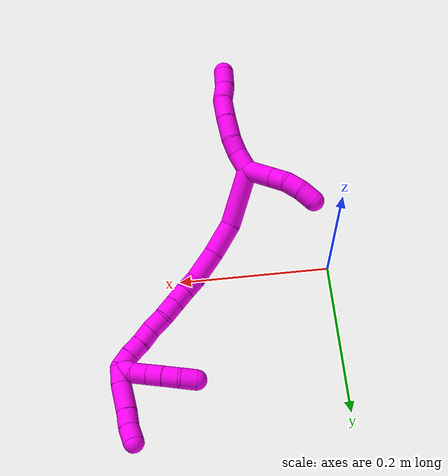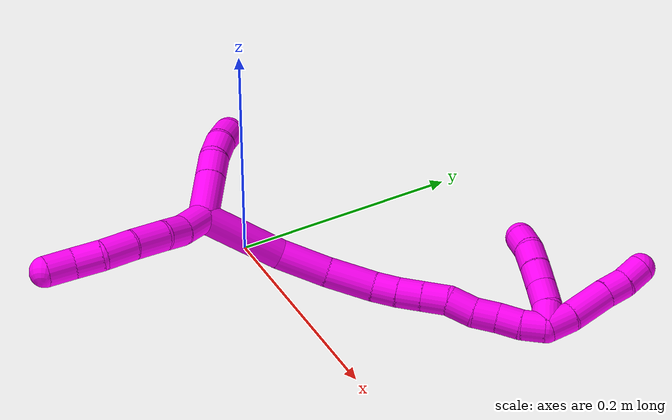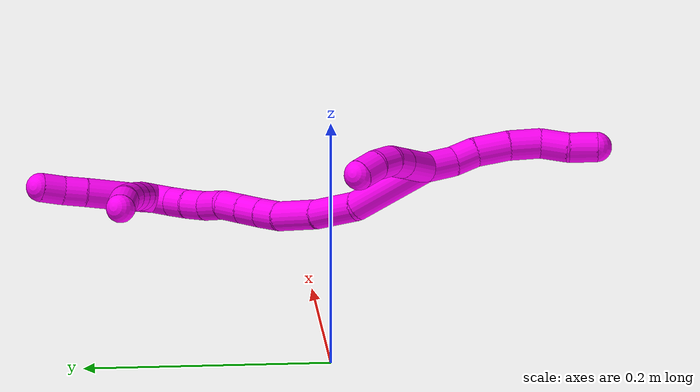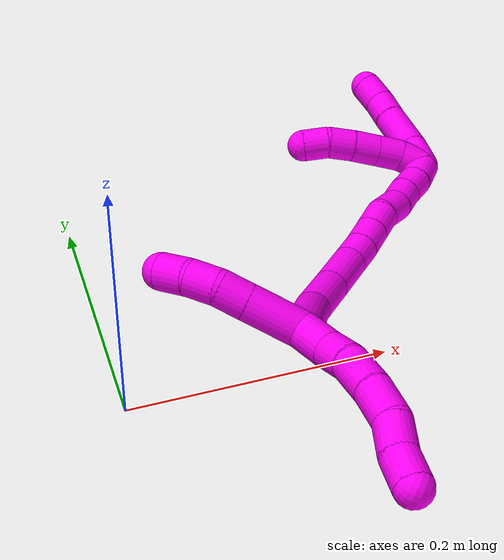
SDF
<sdf version="1.7">
 <world name="default">
  <model name="10">
   <static>0</static>
   <link name="10">
    <collision name="collision-cylinder-e_1_2_8">
     <pose>-0.008161 -0.002616 0.009718 0.262996 -0.681357 -0.093705</pose>
     <geometry><cylinder><radius>0.0125</radius><length>0.025915</length></cylinder></geometry>
     <surface>
      <friction><ode><mu>1.16</mu><mu2>1.16</mu2><slip1>0</slip1><slip2>0</slip2></ode></friction>
      <contact><ode><kp>1e+06</kp><kd>1</kd><max_vel>0</max_vel><min_depth>0.001</min_depth></ode></contact>
     </surface>
    </collision>
    <visual name="visual-cylinder-e_1_2_8">
     <pose>-0.008161 -0.002616 0.009718 0.262996 -0.681357 -0.093705</pose>
     <geometry><cylinder><radius>0.0125</radius><length>0.025915</length></cylinder></geometry>
     <material><ambient>1 0 0.964706 1</ambient></material>
    </visual>
    <collision name="collision-cylinder-e_2_8_9">
     <pose>-0.024489 -0.006558 0.025728 0.207571 -0.903849 -0.101039</pose>
     <geometry><cylinder><radius>0.0125</radius><length>0.020787</length></cylinder></geometry>
     <surface>
      <friction><ode><mu>1.16</mu><mu2>1.16</mu2><slip1>0</slip1><slip2>0</slip2></ode></friction>
      <contact><ode><kp>1e+06</kp><kd>1</kd><max_vel>0</max_vel><min_depth>0.001</min_depth></ode></contact>
     </surface>
    </collision>
    <visual name="visual-cylinder-e_2_8_9">
     <pose>-0.024489 -0.006558 0.025728 0.207571 -0.903849 -0.101039</pose>
     <geometry><cylinder><radius>0.0125</radius><length>0.020787</length></cylinder></geometry>
     <material><ambient>1 0 0.964706 1</ambient></material>
    </visual>
    <collision name="collision-cylinder-e_3_9_10">
     <pose>-0.0435 -0.012884 0.040233 0.546916 -0.845369 -0.250996</pose>
     <geometry><cylinder><radius>0.0125</radius><length>0.028988</length></cylinder></geometry>
     <surface>
      <friction><ode><mu>1.16</mu><mu2>1.16</mu2><slip1>0</slip1><slip2>0</slip2></ode></friction>
      <contact><ode><kp>1e+06</kp><kd>1</kd><max_vel>0</max_vel><min_depth>0.001</min_depth></ode></contact>
     </surface>
    </collision>
    <visual name="visual-cylinder-e_3_9_10">
     <pose>-0.0435 -0.012884 0.040233 0.546916 -0.845369 -0.250996</pose>
     <geometry><cylinder><radius>0.0125</radius><length>0.028988</length></cylinder></geometry>
     <material><ambient>1 0 0.964706 1</ambient></material>
    </visual>
    <collision name="collision-cylinder-e_4_10_11">
     <pose>-0.063697 -0.024101 0.056019 0.687367 -0.762116 -0.284826</pose>
     <geometry><cylinder><radius>0.0125</radius><length>0.027089</length></cylinder></geometry>
     <surface>
      <friction><ode><mu>1.16</mu><mu2>1.16</mu2><slip1>0</slip1><slip2>0</slip2></ode></friction>
      <contact><ode><kp>1e+06</kp><kd>1</kd><max_vel>0</max_vel><min_depth>0.001</min_depth></ode></contact>
     </surface>
    </collision>
    <visual name="visual-cylinder-e_4_10_11">
     <pose>-0.063697 -0.024101 0.056019 0.687367 -0.762116 -0.284826</pose>
     <geometry><cylinder><radius>0.0125</radius><length>0.027089</length></cylinder></geometry>
     <material><ambient>1 0 0.964706 1</ambient></material>
    </visual>
    <collision name="collision-cylinder-e_5_11_12">
     <pose>-0.080103 -0.038587 0.068154 1.06662 -0.641577 -0.387399</pose>
     <geometry><cylinder><radius>0.0125</radius><length>0.023576</length></cylinder></geometry>
     <surface>
      <friction><ode><mu>1.16</mu><mu2>1.16</mu2><slip1>0</slip1><slip2>0</slip2></ode></friction>
      <contact><ode><kp>1e+06</kp><kd>1</kd><max_vel>0</max_vel><min_depth>0.001</min_depth></ode></contact>
     </surface>
    </collision>
    <visual name="visual-cylinder-e_5_11_12">
     <pose>-0.080103 -0.038587 0.068154 1.06662 -0.641577 -0.387399</pose>
     <geometry><cylinder><radius>0.0125</radius><length>0.023576</length></cylinder></geometry>
     <material><ambient>1 0 0.964706 1</ambient></material>
    </visual>
    <collision name="collision-cylinder-e_6_12_6">
     <pose>-0.095301 -0.053185 0.078495 0.830837 -0.759843 -0.348696</pose>
     <geometry><cylinder><radius>0.0125</radius><length>0.023645</length></cylinder></geometry>
     <surface>
      <friction><ode><mu>1.16</mu><mu2>1.16</mu2><slip1>0</slip1><slip2>0</slip2></ode></friction>
      <contact><ode><kp>1e+06</kp><kd>1</kd><max_vel>0</max_vel><min_depth>0.001</min_depth></ode></contact>
     </surface>
    </collision>
    <visual name="visual-cylinder-e_6_12_6">
     <pose>-0.095301 -0.053185 0.078495 0.830837 -0.759843 -0.348696</pose>
     <geometry><cylinder><radius>0.0125</radius><length>0.023645</length></cylinder></geometry>
     <material><ambient>1 0 0.964706 1</ambient></material>
    </visual>
    <collision name="collision-cylinder-e_1_2_13">
     <pose>0.000641 0.000458 -0.019201 -3.11777 0.033381 -1.90196</pose>
     <geometry><cylinder><radius>0.0125</radius><length>0.038434</length></cylinder></geometry>
     <surface>
      <friction><ode><mu>1.16</mu><mu2>1.16</mu2><slip1>0</slip1><slip2>0</slip2></ode></friction>
      <contact><ode><kp>1e+06</kp><kd>1</kd><max_vel>0</max_vel><min_depth>0.001</min_depth></ode></contact>
     </surface>
    </collision>
    <visual name="visual-cylinder-e_1_2_13">
     <pose>0.000641 0.000458 -0.019201 -3.11777 0.033381 -1.90196</pose>
     <geometry><cylinder><radius>0.0125</radius><length>0.038434</length></cylinder></geometry>
     <material><ambient>1 0 0.964706 1</ambient></material>
    </visual>
    <collision name="collision-cylinder-e_2_13_14">
     <pose>0.001679 0.001203 -0.048435 -3.11294 0.039505 -1.88673</pose>
     <geometry><cylinder><radius>0.0125</radius><length>0.020091</length></cylinder></geometry>
     <surface>
      <friction><ode><mu>1.16</mu><mu2>1.16</mu2><slip1>0</slip1><slip2>0</slip2></ode></friction>
      <contact><ode><kp>1e+06</kp><kd>1</kd><max_vel>0</max_vel><min_depth>0.001</min_depth></ode></contact>
     </surface>
    </collision>
    <visual name="visual-cylinder-e_2_13_14">
     <pose>0.001679 0.001203 -0.048435 -3.11294 0.039505 -1.88673</pose>
     <geometry><cylinder><radius>0.0125</radius><length>0.020091</length></cylinder></geometry>
     <material><ambient>1 0 0.964706 1</ambient></material>
    </visual>
    <collision name="collision-cylinder-e_3_14_15">
     <pose>0.005265 0.000553 -0.068297 3.04657 0.312423 2.55519</pose>
     <geometry><cylinder><radius>0.0125</radius><length>0.020751</length></cylinder></geometry>
     <surface>
      <friction><ode><mu>1.16</mu><mu2>1.16</mu2><slip1>0</slip1><slip2>0</slip2></ode></friction>
      <contact><ode><kp>1e+06</kp><kd>1</kd><max_vel>0</max_vel><min_depth>0.001</min_depth></ode></contact>
     </surface>
    </collision>
    <visual name="visual-cylinder-e_3_14_15">
     <pose>0.005265 0.000553 -0.068297 3.04657 0.312423 2.55519</pose>
     <geometry><cylinder><radius>0.0125</radius><length>0.020751</length></cylinder></geometry>
     <material><ambient>1 0 0.964706 1</ambient></material>
    </visual>
    <collision name="collision-cylinder-e_4_15_5">
     <pose>0.01368 -0.002104 -0.086907 2.94816 0.528591 2.45315</pose>
     <geometry><cylinder><radius>0.0125</radius><length>0.020725</length></cylinder></geometry>
     <surface>
      <friction><ode><mu>1.16</mu><mu2>1.16</mu2><slip1>0</slip1><slip2>0</slip2></ode></friction>
      <contact><ode><kp>1e+06</kp><kd>1</kd><max_vel>0</max_vel><min_depth>0.001</min_depth></ode></contact>
     </surface>
    </collision>
    <visual name="visual-cylinder-e_4_15_5">
     <pose>0.01368 -0.002104 -0.086907 2.94816 0.528591 2.45315</pose>
     <geometry><cylinder><radius>0.0125</radius><length>0.020725</length></cylinder></geometry>
     <material><ambient>1 0 0.964706 1</ambient></material>
    </visual>
    <collision name="collision-cylinder-e_1_2_16">
     <pose>0.034525 0.010285 0.003076 -1.2802 1.26934 -1.0031</pose>
     <geometry><cylinder><radius>0.0125</radius><length>0.072311</length></cylinder></geometry>
     <surface>
      <friction><ode><mu>1.16</mu><mu2>1.16</mu2><slip1>0</slip1><slip2>0</slip2></ode></friction>
      <contact><ode><kp>1e+06</kp><kd>1</kd><max_vel>0</max_vel><min_depth>0.001</min_depth></ode></contact>
     </surface>
    </collision>
    <visual name="visual-cylinder-e_1_2_16">
     <pose>0.034525 0.010285 0.003076 -1.2802 1.26934 -1.0031</pose>
     <geometry><cylinder><radius>0.0125</radius><length>0.072311</length></cylinder></geometry>
     <material><ambient>1 0 0.964706 1</ambient></material>
    </visual>
    <collision name="collision-cylinder-e_2_16_17">
     <pose>0.086308 0.032098 0.009997 -1.24887 0.957247 -0.715622</pose>
     <geometry><cylinder><radius>0.0125</radius><length>0.042214</length></cylinder></geometry>
     <surface>
      <friction><ode><mu>1.16</mu><mu2>1.16</mu2><slip1>0</slip1><slip2>0</slip2></ode></friction>
      <contact><ode><kp>1e+06</kp><kd>1</kd><max_vel>0</max_vel><min_depth>0.001</min_depth></ode></contact>
     </surface>
    </collision>
    <visual name="visual-cylinder-e_2_16_17">
     <pose>0.086308 0.032098 0.009997 -1.24887 0.957247 -0.715622</pose>
     <geometry><cylinder><radius>0.0125</radius><length>0.042214</length></cylinder></geometry>
     <material><ambient>1 0 0.964706 1</ambient></material>
    </visual>
    <collision name="collision-cylinder-e_3_17_18">
     <pose>0.118475 0.056484 0.017706 -1.27885 0.83771 -0.639426</pose>
     <geometry><cylinder><radius>0.0125</radius><length>0.040126</length></cylinder></geometry>
     <surface>
      <friction><ode><mu>1.16</mu><mu2>1.16</mu2><slip1>0</slip1><slip2>0</slip2></ode></friction>
      <contact><ode><kp>1e+06</kp><kd>1</kd><max_vel>0</max_vel><min_depth>0.001</min_depth></ode></contact>
     </surface>
    </collision>
    <visual name="visual-cylinder-e_3_17_18">
     <pose>0.118475 0.056484 0.017706 -1.27885 0.83771 -0.639426</pose>
     <geometry><cylinder><radius>0.0125</radius><length>0.040126</length></cylinder></geometry>
     <material><ambient>1 0 0.964706 1</ambient></material>
    </visual>
    <collision name="collision-cylinder-e_4_18_19">
     <pose>0.139681 0.077108 0.023756 -1.29648 0.662768 -0.50988</pose>
     <geometry><cylinder><radius>0.0125</radius><length>0.020469</length></cylinder></geometry>
     <surface>
      <friction><ode><mu>1.16</mu><mu2>1.16</mu2><slip1>0</slip1><slip2>0</slip2></ode></friction>
      <contact><ode><kp>1e+06</kp><kd>1</kd><max_vel>0</max_vel><min_depth>0.001</min_depth></ode></contact>
     </surface>
    </collision>
    <visual name="visual-cylinder-e_4_18_19">
     <pose>0.139681 0.077108 0.023756 -1.29648 0.662768 -0.50988</pose>
     <geometry><cylinder><radius>0.0125</radius><length>0.020469</length></cylinder></geometry>
     <material><ambient>1 0 0.964706 1</ambient></material>
    </visual>
    <collision name="collision-cylinder-e_5_19_20">
     <pose>0.152126 0.092973 0.027477 -1.3834 0.640815 -0.536417</pose>
     <geometry><cylinder><radius>0.0125</radius><length>0.020565</length></cylinder></geometry>
     <surface>
      <friction><ode><mu>1.16</mu><mu2>1.16</mu2><slip1>0</slip1><slip2>0</slip2></ode></friction>
      <contact><ode><kp>1e+06</kp><kd>1</kd><max_vel>0</max_vel><min_depth>0.001</min_depth></ode></contact>
     </surface>
    </collision>
    <visual name="visual-cylinder-e_5_19_20">
     <pose>0.152126 0.092973 0.027477 -1.3834 0.640815 -0.536417</pose>
     <geometry><cylinder><radius>0.0125</radius><length>0.020565</length></cylinder></geometry>
     <material><ambient>1 0 0.964706 1</ambient></material>
    </visual>
    <collision name="collision-cylinder-e_6_20_21">
     <pose>0.164766 0.109613 0.030625 -1.38419 0.64152 -0.537431</pose>
     <geometry><cylinder><radius>0.0125</radius><length>0.0217</length></cylinder></geometry>
     <surface>
      <friction><ode><mu>1.16</mu><mu2>1.16</mu2><slip1>0</slip1><slip2>0</slip2></ode></friction>
      <contact><ode><kp>1e+06</kp><kd>1</kd><max_vel>0</max_vel><min_depth>0.001</min_depth></ode></contact>
     </surface>
    </collision>
    <visual name="visual-cylinder-e_6_20_21">
     <pose>0.164766 0.109613 0.030625 -1.38419 0.64152 -0.537431</pose>
     <geometry><cylinder><radius>0.0125</radius><length>0.0217</length></cylinder></geometry>
     <material><ambient>1 0 0.964706 1</ambient></material>
    </visual>
    <collision name="collision-cylinder-e_7_21_22">
     <pose>0.179055 0.125187 0.036337 -1.04306 0.763806 -0.453601</pose>
     <geometry><cylinder><radius>0.0125</radius><length>0.022541</length></cylinder></geometry>
     <surface>
      <friction><ode><mu>1.16</mu><mu2>1.16</mu2><slip1>0</slip1><slip2>0</slip2></ode></friction>
      <contact><ode><kp>1e+06</kp><kd>1</kd><max_vel>0</max_vel><min_depth>0.001</min_depth></ode></contact>
     </surface>
    </collision>
    <visual name="visual-cylinder-e_7_21_22">
     <pose>0.179055 0.125187 0.036337 -1.04306 0.763806 -0.453601</pose>
     <geometry><cylinder><radius>0.0125</radius><length>0.022541</length></cylinder></geometry>
     <material><ambient>1 0 0.964706 1</ambient></material>
    </visual>
    <collision name="collision-cylinder-e_8_22_23">
     <pose>0.193526 0.139501 0.042063 -1.35092 0.729859 -0.594055</pose>
     <geometry><cylinder><radius>0.0125</radius><length>0.020023</length></cylinder></geometry>
     <surface>
      <friction><ode><mu>1.16</mu><mu2>1.16</mu2><slip1>0</slip1><slip2>0</slip2></ode></friction>
      <contact><ode><kp>1e+06</kp><kd>1</kd><max_vel>0</max_vel><min_depth>0.001</min_depth></ode></contact>
     </surface>
    </collision>
    <visual name="visual-cylinder-e_8_22_23">
     <pose>0.193526 0.139501 0.042063 -1.35092 0.729859 -0.594055</pose>
     <geometry><cylinder><radius>0.0125</radius><length>0.020023</length></cylinder></geometry>
     <material><ambient>1 0 0.964706 1</ambient></material>
    </visual>
    <collision name="collision-cylinder-e_9_23_24">
     <pose>0.206377 0.154184 0.046365 -1.22408 0.665449 -0.475962</pose>
     <geometry><cylinder><radius>0.0125</radius><length>0.020007</length></cylinder></geometry>
     <surface>
      <friction><ode><mu>1.16</mu><mu2>1.16</mu2><slip1>0</slip1><slip2>0</slip2></ode></friction>
      <contact><ode><kp>1e+06</kp><kd>1</kd><max_vel>0</max_vel><min_depth>0.001</min_depth></ode></contact>
     </surface>
    </collision>
    <visual name="visual-cylinder-e_9_23_24">
     <pose>0.206377 0.154184 0.046365 -1.22408 0.665449 -0.475962</pose>
     <geometry><cylinder><radius>0.0125</radius><length>0.020007</length></cylinder></geometry>
     <material><ambient>1 0 0.964706 1</ambient></material>
    </visual>
    <collision name="collision-cylinder-e_10_24_1">
     <pose>0.21881 0.16937 0.049858 -1.46601 0.674302 -0.611418</pose>
     <geometry><cylinder><radius>0.0125</radius><length>0.020042</length></cylinder></geometry>
     <surface>
      <friction><ode><mu>1.16</mu><mu2>1.16</mu2><slip1>0</slip1><slip2>0</slip2></ode></friction>
      <contact><ode><kp>1e+06</kp><kd>1</kd><max_vel>0</max_vel><min_depth>0.001</min_depth></ode></contact>
     </surface>
    </collision>
    <visual name="visual-cylinder-e_10_24_1">
     <pose>0.21881 0.16937 0.049858 -1.46601 0.674302 -0.611418</pose>
     <geometry><cylinder><radius>0.0125</radius><length>0.020042</length></cylinder></geometry>
     <material><ambient>1 0 0.964706 1</ambient></material>
    </visual>
    <collision name="collision-cylinder-e_1_1_25">
     <pose>0.22511 0.177108 0.040676 3.13695 0.004362 1.50889</pose>
     <geometry><cylinder><radius>0.0125</radius><length>0.02</length></cylinder></geometry>
     <surface>
      <friction><ode><mu>1.16</mu><mu2>1.16</mu2><slip1>0</slip1><slip2>0</slip2></ode></friction>
      <contact><ode><kp>1e+06</kp><kd>1</kd><max_vel>0</max_vel><min_depth>0.001</min_depth></ode></contact>
     </surface>
    </collision>
    <visual name="visual-cylinder-e_1_1_25">
     <pose>0.22511 0.177108 0.040676 3.13695 0.004362 1.50889</pose>
     <geometry><cylinder><radius>0.0125</radius><length>0.02</length></cylinder></geometry>
     <material><ambient>1 0 0.964706 1</ambient></material>
    </visual>
    <collision name="collision-cylinder-e_2_25_26">
     <pose>0.223967 0.174462 0.021094 2.87666 -0.119019 -0.840939</pose>
     <geometry><cylinder><radius>0.0125</radius><length>0.02</length></cylinder></geometry>
     <surface>
      <friction><ode><mu>1.16</mu><mu2>1.16</mu2><slip1>0</slip1><slip2>0</slip2></ode></friction>
      <contact><ode><kp>1e+06</kp><kd>1</kd><max_vel>0</max_vel><min_depth>0.001</min_depth></ode></contact>
     </surface>
    </collision>
    <visual name="visual-cylinder-e_2_25_26">
     <pose>0.223967 0.174462 0.021094 2.87666 -0.119019 -0.840939</pose>
     <geometry><cylinder><radius>0.0125</radius><length>0.02</length></cylinder></geometry>
     <material><ambient>1 0 0.964706 1</ambient></material>
    </visual>
    <collision name="collision-cylinder-e_3_26_27">
     <pose>0.221554 0.169161 0.001961 2.86594 -0.122859 -0.834755</pose>
     <geometry><cylinder><radius>0.0125</radius><length>0.02</length></cylinder></geometry>
     <surface>
      <friction><ode><mu>1.16</mu><mu2>1.16</mu2><slip1>0</slip1><slip2>0</slip2></ode></friction>
      <contact><ode><kp>1e+06</kp><kd>1</kd><max_vel>0</max_vel><min_depth>0.001</min_depth></ode></contact>
     </surface>
    </collision>
    <visual name="visual-cylinder-e_3_26_27">
     <pose>0.221554 0.169161 0.001961 2.86594 -0.122859 -0.834755</pose>
     <geometry><cylinder><radius>0.0125</radius><length>0.02</length></cylinder></geometry>
     <material><ambient>1 0 0.964706 1</ambient></material>
    </visual>
    <collision name="collision-cylinder-e_4_27_28">
     <pose>0.219571 0.163197 -0.017011 2.8083 -0.075795 -0.443415</pose>
     <geometry><cylinder><radius>0.0125</radius><length>0.02</length></cylinder></geometry>
     <surface>
      <friction><ode><mu>1.16</mu><mu2>1.16</mu2><slip1>0</slip1><slip2>0</slip2></ode></friction>
      <contact><ode><kp>1e+06</kp><kd>1</kd><max_vel>0</max_vel><min_depth>0.001</min_depth></ode></contact>
     </surface>
    </collision>
    <visual name="visual-cylinder-e_4_27_28">
     <pose>0.219571 0.163197 -0.017011 2.8083 -0.075795 -0.443415</pose>
     <geometry><cylinder><radius>0.0125</radius><length>0.02</length></cylinder></geometry>
     <material><ambient>1 0 0.964706 1</ambient></material>
    </visual>
    <collision name="collision-cylinder-e_5_28_4">
     <pose>0.219401 0.154472 -0.034789 2.56247 0.058728 0.196539</pose>
     <geometry><cylinder><radius>0.0125</radius><length>0.02</length></cylinder></geometry>
     <surface>
      <friction><ode><mu>1.16</mu><mu2>1.16</mu2><slip1>0</slip1><slip2>0</slip2></ode></friction>
      <contact><ode><kp>1e+06</kp><kd>1</kd><max_vel>0</max_vel><min_depth>0.001</min_depth></ode></contact>
     </surface>
    </collision>
    <visual name="visual-cylinder-e_5_28_4">
     <pose>0.219401 0.154472 -0.034789 2.56247 0.058728 0.196539</pose>
     <geometry><cylinder><radius>0.0125</radius><length>0.02</length></cylinder></geometry>
     <material><ambient>1 0 0.964706 1</ambient></material>
    </visual>
    <collision name="collision-cylinder-e_1_1_29">
     <pose>0.232102 0.183755 0.044236 -2.34392 0.651638 -1.35156</pose>
     <geometry><cylinder><radius>0.0125</radius><length>0.023198</length></cylinder></geometry>
     <surface>
      <friction><ode><mu>1.16</mu><mu2>1.16</mu2><slip1>0</slip1><slip2>0</slip2></ode></friction>
      <contact><ode><kp>1e+06</kp><kd>1</kd><max_vel>0</max_vel><min_depth>0.001</min_depth></ode></contact>
     </surface>
    </collision>
    <visual name="visual-cylinder-e_1_1_29">
     <pose>0.232102 0.183755 0.044236 -2.34392 0.651638 -1.35156</pose>
     <geometry><cylinder><radius>0.0125</radius><length>0.023198</length></cylinder></geometry>
     <material><ambient>1 0 0.964706 1</ambient></material>
    </visual>
    <collision name="collision-cylinder-e_2_29_30">
     <pose>0.248511 0.199692 0.025435 -2.49469 0.544243 -1.38838</pose>
     <geometry><cylinder><radius>0.0125</radius><length>0.036211</length></cylinder></geometry>
     <surface>
      <friction><ode><mu>1.16</mu><mu2>1.16</mu2><slip1>0</slip1><slip2>0</slip2></ode></friction>
      <contact><ode><kp>1e+06</kp><kd>1</kd><max_vel>0</max_vel><min_depth>0.001</min_depth></ode></contact>
     </surface>
    </collision>
    <visual name="visual-cylinder-e_2_29_30">
     <pose>0.248511 0.199692 0.025435 -2.49469 0.544243 -1.38838</pose>
     <geometry><cylinder><radius>0.0125</radius><length>0.036211</length></cylinder></geometry>
     <material><ambient>1 0 0.964706 1</ambient></material>
    </visual>
    <collision name="collision-cylinder-e_3_30_31">
     <pose>0.263585 0.214536 0.006802 -2.42098 0.599106 -1.37335</pose>
     <geometry><cylinder><radius>0.0125</radius><length>0.020216</length></cylinder></geometry>
     <surface>
      <friction><ode><mu>1.16</mu><mu2>1.16</mu2><slip1>0</slip1><slip2>0</slip2></ode></friction>
      <contact><ode><kp>1e+06</kp><kd>1</kd><max_vel>0</max_vel><min_depth>0.001</min_depth></ode></contact>
     </surface>
    </collision>
    <visual name="visual-cylinder-e_3_30_31">
     <pose>0.263585 0.214536 0.006802 -2.42098 0.599106 -1.37335</pose>
     <geometry><cylinder><radius>0.0125</radius><length>0.020216</length></cylinder></geometry>
     <material><ambient>1 0 0.964706 1</ambient></material>
    </visual>
    <collision name="collision-cylinder-e_4_31_3">
     <pose>0.273789 0.224915 -0.007202 -2.57944 0.457879 -1.35811</pose>
     <geometry><cylinder><radius>0.0125</radius><length>0.020375</length></cylinder></geometry>
     <surface>
      <friction><ode><mu>1.16</mu><mu2>1.16</mu2><slip1>0</slip1><slip2>0</slip2></ode></friction>
      <contact><ode><kp>1e+06</kp><kd>1</kd><max_vel>0</max_vel><min_depth>0.001</min_depth></ode></contact>
     </surface>
    </collision>
    <visual name="visual-cylinder-e_4_31_3">
     <pose>0.273789 0.224915 -0.007202 -2.57944 0.457879 -1.35811</pose>
     <geometry><cylinder><radius>0.0125</radius><length>0.020375</length></cylinder></geometry>
     <material><ambient>1 0 0.964706 1</ambient></material>
    </visual>
    <collision name="collision-sphere-3">
     <pose>0.278292 0.229785 -0.014933 0 -0 0</pose>
     <geometry><sphere><radius>0.0125</radius></sphere></geometry>
     <surface>
      <friction><ode><mu>1.16</mu><mu2>1.16</mu2><slip1>0</slip1><slip2>0</slip2></ode></friction>
      <contact><ode><kp>1e+06</kp><kd>1</kd><max_vel>0</max_vel><min_depth>0.001</min_depth></ode></contact>
     </surface>
    </collision>
    <visual name="visual-sphere-3">
     <pose>0.278292 0.229785 -0.014933 0 -0 0</pose>
     <geometry><sphere><radius>0.0125</radius></sphere></geometry>
     <material><ambient>1 0 0.964706 1</ambient></material>
    </visual>
    <collision name="collision-sphere-31">
     <pose>0.269285 0.220044 0.00053 0 -0 0</pose>
     <geometry><sphere><radius>0.0125</radius></sphere></geometry>
     <surface>
      <friction><ode><mu>1.16</mu><mu2>1.16</mu2><slip1>0</slip1><slip2>0</slip2></ode></friction>
      <contact><ode><kp>1e+06</kp><kd>1</kd><max_vel>0</max_vel><min_depth>0.001</min_depth></ode></contact>
     </surface>
    </collision>
    <visual name="visual-sphere-31">
     <pose>0.269285 0.220044 0.00053 0 -0 0</pose>
     <geometry><sphere><radius>0.0125</radius></sphere></geometry>
     <material><ambient>1 0 0.964706 1</ambient></material>
    </visual>
    <collision name="collision-sphere-30">
     <pose>0.257885 0.209028 0.013075 0 -0 0</pose>
     <geometry><sphere><radius>0.0125</radius></sphere></geometry>
     <surface>
      <friction><ode><mu>1.16</mu><mu2>1.16</mu2><slip1>0</slip1><slip2>0</slip2></ode></friction>
      <contact><ode><kp>1e+06</kp><kd>1</kd><max_vel>0</max_vel><min_depth>0.001</min_depth></ode></contact>
     </surface>
    </collision>
    <visual name="visual-sphere-30">
     <pose>0.257885 0.209028 0.013075 0 -0 0</pose>
     <geometry><sphere><radius>0.0125</radius></sphere></geometry>
     <material><ambient>1 0 0.964706 1</ambient></material>
    </visual>
    <collision name="collision-sphere-29">
     <pose>0.239136 0.190356 0.037795 0 -0 0</pose>
     <geometry><sphere><radius>0.0125</radius></sphere></geometry>
     <surface>
      <friction><ode><mu>1.16</mu><mu2>1.16</mu2><slip1>0</slip1><slip2>0</slip2></ode></friction>
      <contact><ode><kp>1e+06</kp><kd>1</kd><max_vel>0</max_vel><min_depth>0.001</min_depth></ode></contact>
     </surface>
    </collision>
    <visual name="visual-sphere-29">
     <pose>0.239136 0.190356 0.037795 0 -0 0</pose>
     <geometry><sphere><radius>0.0125</radius></sphere></geometry>
     <material><ambient>1 0 0.964706 1</ambient></material>
    </visual>
    <collision name="collision-sphere-4">
     <pose>0.219988 0.149008 -0.043144 0 -0 0</pose>
     <geometry><sphere><radius>0.0125</radius></sphere></geometry>
     <surface>
      <friction><ode><mu>1.16</mu><mu2>1.16</mu2><slip1>0</slip1><slip2>0</slip2></ode></friction>
      <contact><ode><kp>1e+06</kp><kd>1</kd><max_vel>0</max_vel><min_depth>0.001</min_depth></ode></contact>
     </surface>
    </collision>
    <visual name="visual-sphere-4">
     <pose>0.219988 0.149008 -0.043144 0 -0 0</pose>
     <geometry><sphere><radius>0.0125</radius></sphere></geometry>
     <material><ambient>1 0 0.964706 1</ambient></material>
    </visual>
    <collision name="collision-sphere-28">
     <pose>0.218814 0.159935 -0.026434 0 -0 0</pose>
     <geometry><sphere><radius>0.0125</radius></sphere></geometry>
     <surface>
      <friction><ode><mu>1.16</mu><mu2>1.16</mu2><slip1>0</slip1><slip2>0</slip2></ode></friction>
      <contact><ode><kp>1e+06</kp><kd>1</kd><max_vel>0</max_vel><min_depth>0.001</min_depth></ode></contact>
     </surface>
    </collision>
    <visual name="visual-sphere-28">
     <pose>0.218814 0.159935 -0.026434 0 -0 0</pose>
     <geometry><sphere><radius>0.0125</radius></sphere></geometry>
     <material><ambient>1 0 0.964706 1</ambient></material>
    </visual>
    <collision name="collision-sphere-27">
     <pose>0.220328 0.166459 -0.007589 0 -0 0</pose>
     <geometry><sphere><radius>0.0125</radius></sphere></geometry>
     <surface>
      <friction><ode><mu>1.16</mu><mu2>1.16</mu2><slip1>0</slip1><slip2>0</slip2></ode></friction>
      <contact><ode><kp>1e+06</kp><kd>1</kd><max_vel>0</max_vel><min_depth>0.001</min_depth></ode></contact>
     </surface>
    </collision>
    <visual name="visual-sphere-27">
     <pose>0.220328 0.166459 -0.007589 0 -0 0</pose>
     <geometry><sphere><radius>0.0125</radius></sphere></geometry>
     <material><ambient>1 0 0.964706 1</ambient></material>
    </visual>
    <collision name="collision-sphere-26">
     <pose>0.222779 0.171862 0.011511 0 -0 0</pose>
     <geometry><sphere><radius>0.0125</radius></sphere></geometry>
     <surface>
      <friction><ode><mu>1.16</mu><mu2>1.16</mu2><slip1>0</slip1><slip2>0</slip2></ode></friction>
      <contact><ode><kp>1e+06</kp><kd>1</kd><max_vel>0</max_vel><min_depth>0.001</min_depth></ode></contact>
     </surface>
    </collision>
    <visual name="visual-sphere-26">
     <pose>0.222779 0.171862 0.011511 0 -0 0</pose>
     <geometry><sphere><radius>0.0125</radius></sphere></geometry>
     <material><ambient>1 0 0.964706 1</ambient></material>
    </visual>
    <collision name="collision-sphere-25">
     <pose>0.225154 0.177062 0.030677 0 -0 0</pose>
     <geometry><sphere><radius>0.0125</radius></sphere></geometry>
     <surface>
      <friction><ode><mu>1.16</mu><mu2>1.16</mu2><slip1>0</slip1><slip2>0</slip2></ode></friction>
      <contact><ode><kp>1e+06</kp><kd>1</kd><max_vel>0</max_vel><min_depth>0.001</min_depth></ode></contact>
     </surface>
    </collision>
    <visual name="visual-sphere-25">
     <pose>0.225154 0.177062 0.030677 0 -0 0</pose>
     <geometry><sphere><radius>0.0125</radius></sphere></geometry>
     <material><ambient>1 0 0.964706 1</ambient></material>
    </visual>
    <collision name="collision-sphere-1">
     <pose>0.225067 0.177155 0.050676 0 -0 0</pose>
     <geometry><sphere><radius>0.0125</radius></sphere></geometry>
     <surface>
      <friction><ode><mu>1.16</mu><mu2>1.16</mu2><slip1>0</slip1><slip2>0</slip2></ode></friction>
      <contact><ode><kp>1e+06</kp><kd>1</kd><max_vel>0</max_vel><min_depth>0.001</min_depth></ode></contact>
     </surface>
    </collision>
    <visual name="visual-sphere-1">
     <pose>0.225067 0.177155 0.050676 0 -0 0</pose>
     <geometry><sphere><radius>0.0125</radius></sphere></geometry>
     <material><ambient>1 0 0.964706 1</ambient></material>
    </visual>
    <collision name="collision-sphere-24">
     <pose>0.212554 0.161585 0.049039 0 -0 0</pose>
     <geometry><sphere><radius>0.0125</radius></sphere></geometry>
     <surface>
      <friction><ode><mu>1.16</mu><mu2>1.16</mu2><slip1>0</slip1><slip2>0</slip2></ode></friction>
      <contact><ode><kp>1e+06</kp><kd>1</kd><max_vel>0</max_vel><min_depth>0.001</min_depth></ode></contact>
     </surface>
    </collision>
    <visual name="visual-sphere-24">
     <pose>0.212554 0.161585 0.049039 0 -0 0</pose>
     <geometry><sphere><radius>0.0125</radius></sphere></geometry>
     <material><ambient>1 0 0.964706 1</ambient></material>
    </visual>
    <collision name="collision-sphere-23">
     <pose>0.200201 0.146783 0.043691 0 -0 0</pose>
     <geometry><sphere><radius>0.0125</radius></sphere></geometry>
     <surface>
      <friction><ode><mu>1.16</mu><mu2>1.16</mu2><slip1>0</slip1><slip2>0</slip2></ode></friction>
      <contact><ode><kp>1e+06</kp><kd>1</kd><max_vel>0</max_vel><min_depth>0.001</min_depth></ode></contact>
     </surface>
    </collision>
    <visual name="visual-sphere-23">
     <pose>0.200201 0.146783 0.043691 0 -0 0</pose>
     <geometry><sphere><radius>0.0125</radius></sphere></geometry>
     <material><ambient>1 0 0.964706 1</ambient></material>
    </visual>
    <collision name="collision-sphere-22">
     <pose>0.18685 0.13222 0.040436 0 -0 0</pose>
     <geometry><sphere><radius>0.0125</radius></sphere></geometry>
     <surface>
      <friction><ode><mu>1.16</mu><mu2>1.16</mu2><slip1>0</slip1><slip2>0</slip2></ode></friction>
      <contact><ode><kp>1e+06</kp><kd>1</kd><max_vel>0</max_vel><min_depth>0.001</min_depth></ode></contact>
     </surface>
    </collision>
    <visual name="visual-sphere-22">
     <pose>0.18685 0.13222 0.040436 0 -0 0</pose>
     <geometry><sphere><radius>0.0125</radius></sphere></geometry>
     <material><ambient>1 0 0.964706 1</ambient></material>
    </visual>
    <collision name="collision-sphere-21">
     <pose>0.171259 0.118155 0.032238 0 -0 0</pose>
     <geometry><sphere><radius>0.0125</radius></sphere></geometry>
     <surface>
      <friction><ode><mu>1.16</mu><mu2>1.16</mu2><slip1>0</slip1><slip2>0</slip2></ode></friction>
      <contact><ode><kp>1e+06</kp><kd>1</kd><max_vel>0</max_vel><min_depth>0.001</min_depth></ode></contact>
     </surface>
    </collision>
    <visual name="visual-sphere-21">
     <pose>0.171259 0.118155 0.032238 0 -0 0</pose>
     <geometry><sphere><radius>0.0125</radius></sphere></geometry>
     <material><ambient>1 0 0.964706 1</ambient></material>
    </visual>
    <collision name="collision-sphere-12">
     <pose>-0.087157 -0.046856 0.072716 0 -0 0</pose>
     <geometry><sphere><radius>0.0125</radius></sphere></geometry>
     <surface>
      <friction><ode><mu>1.16</mu><mu2>1.16</mu2><slip1>0</slip1><slip2>0</slip2></ode></friction>
      <contact><ode><kp>1e+06</kp><kd>1</kd><max_vel>0</max_vel><min_depth>0.001</min_depth></ode></contact>
     </surface>
    </collision>
    <visual name="visual-sphere-12">
     <pose>-0.087157 -0.046856 0.072716 0 -0 0</pose>
     <geometry><sphere><radius>0.0125</radius></sphere></geometry>
     <material><ambient>1 0 0.964706 1</ambient></material>
    </visual>
    <collision name="collision-sphere-11">
     <pose>-0.073048 -0.030318 0.063592 0 -0 0</pose>
     <geometry><sphere><radius>0.0125</radius></sphere></geometry>
     <surface>
      <friction><ode><mu>1.16</mu><mu2>1.16</mu2><slip1>0</slip1><slip2>0</slip2></ode></friction>
      <contact><ode><kp>1e+06</kp><kd>1</kd><max_vel>0</max_vel><min_depth>0.001</min_depth></ode></contact>
     </surface>
    </collision>
    <visual name="visual-sphere-11">
     <pose>-0.073048 -0.030318 0.063592 0 -0 0</pose>
     <geometry><sphere><radius>0.0125</radius></sphere></geometry>
     <material><ambient>1 0 0.964706 1</ambient></material>
    </visual>
    <collision name="collision-sphere-10">
     <pose>-0.054345 -0.017885 0.048446 0 -0 0</pose>
     <geometry><sphere><radius>0.0125</radius></sphere></geometry>
     <surface>
      <friction><ode><mu>1.16</mu><mu2>1.16</mu2><slip1>0</slip1><slip2>0</slip2></ode></friction>
      <contact><ode><kp>1e+06</kp><kd>1</kd><max_vel>0</max_vel><min_depth>0.001</min_depth></ode></contact>
     </surface>
    </collision>
    <visual name="visual-sphere-10">
     <pose>-0.054345 -0.017885 0.048446 0 -0 0</pose>
     <geometry><sphere><radius>0.0125</radius></sphere></geometry>
     <material><ambient>1 0 0.964706 1</ambient></material>
    </visual>
    <collision name="collision-sphere-9">
     <pose>-0.032656 -0.007883 0.032019 0 -0 0</pose>
     <geometry><sphere><radius>0.0125</radius></sphere></geometry>
     <surface>
      <friction><ode><mu>1.16</mu><mu2>1.16</mu2><slip1>0</slip1><slip2>0</slip2></ode></friction>
      <contact><ode><kp>1e+06</kp><kd>1</kd><max_vel>0</max_vel><min_depth>0.001</min_depth></ode></contact>
     </surface>
    </collision>
    <visual name="visual-sphere-9">
     <pose>-0.032656 -0.007883 0.032019 0 -0 0</pose>
     <geometry><sphere><radius>0.0125</radius></sphere></geometry>
     <material><ambient>1 0 0.964706 1</ambient></material>
    </visual>
    <collision name="collision-sphere-2">
     <geometry><sphere><radius>0.0125</radius></sphere></geometry>
     <surface>
      <friction><ode><mu>1.16</mu><mu2>1.16</mu2><slip1>0</slip1><slip2>0</slip2></ode></friction>
      <contact><ode><kp>1e+06</kp><kd>1</kd><max_vel>0</max_vel><min_depth>0.001</min_depth></ode></contact>
     </surface>
    </collision>
    <visual name="visual-sphere-2">
     <geometry><sphere><radius>0.0125</radius></sphere></geometry>
     <material><ambient>1 0 0.964706 1</ambient></material>
    </visual>
    <collision name="collision-sphere-19">
     <pose>0.145978 0.084874 0.025941 0 -0 0</pose>
     <geometry><sphere><radius>0.0125</radius></sphere></geometry>
     <surface>
      <friction><ode><mu>1.16</mu><mu2>1.16</mu2><slip1>0</slip1><slip2>0</slip2></ode></friction>
      <contact><ode><kp>1e+06</kp><kd>1</kd><max_vel>0</max_vel><min_depth>0.001</min_depth></ode></contact>
     </surface>
    </collision>
    <visual name="visual-sphere-19">
     <pose>0.145978 0.084874 0.025941 0 -0 0</pose>
     <geometry><sphere><radius>0.0125</radius></sphere></geometry>
     <material><ambient>1 0 0.964706 1</ambient></material>
    </visual>
    <collision name="collision-sphere-8">
     <pose>-0.016322 -0.005233 0.019437 0 -0 0</pose>
     <geometry><sphere><radius>0.0125</radius></sphere></geometry>
     <surface>
      <friction><ode><mu>1.16</mu><mu2>1.16</mu2><slip1>0</slip1><slip2>0</slip2></ode></friction>
      <contact><ode><kp>1e+06</kp><kd>1</kd><max_vel>0</max_vel><min_depth>0.001</min_depth></ode></contact>
     </surface>
    </collision>
    <visual name="visual-sphere-8">
     <pose>-0.016322 -0.005233 0.019437 0 -0 0</pose>
     <geometry><sphere><radius>0.0125</radius></sphere></geometry>
     <material><ambient>1 0 0.964706 1</ambient></material>
    </visual>
    <collision name="collision-sphere-6">
     <pose>-0.103444 -0.059515 0.084274 0 -0 0</pose>
     <geometry><sphere><radius>0.0125</radius></sphere></geometry>
     <surface>
      <friction><ode><mu>1.16</mu><mu2>1.16</mu2><slip1>0</slip1><slip2>0</slip2></ode></friction>
      <contact><ode><kp>1e+06</kp><kd>1</kd><max_vel>0</max_vel><min_depth>0.001</min_depth></ode></contact>
     </surface>
    </collision>
    <visual name="visual-sphere-6">
     <pose>-0.103444 -0.059515 0.084274 0 -0 0</pose>
     <geometry><sphere><radius>0.0125</radius></sphere></geometry>
     <material><ambient>1 0 0.964706 1</ambient></material>
    </visual>
    <collision name="collision-sphere-13">
     <pose>0.001283 0.000915 -0.038402 0 -0 0</pose>
     <geometry><sphere><radius>0.0125</radius></sphere></geometry>
     <surface>
      <friction><ode><mu>1.16</mu><mu2>1.16</mu2><slip1>0</slip1><slip2>0</slip2></ode></friction>
      <contact><ode><kp>1e+06</kp><kd>1</kd><max_vel>0</max_vel><min_depth>0.001</min_depth></ode></contact>
     </surface>
    </collision>
    <visual name="visual-sphere-13">
     <pose>0.001283 0.000915 -0.038402 0 -0 0</pose>
     <geometry><sphere><radius>0.0125</radius></sphere></geometry>
     <material><ambient>1 0 0.964706 1</ambient></material>
    </visual>
    <collision name="collision-sphere-14">
     <pose>0.002076 0.00149 -0.058468 0 -0 0</pose>
     <geometry><sphere><radius>0.0125</radius></sphere></geometry>
     <surface>
      <friction><ode><mu>1.16</mu><mu2>1.16</mu2><slip1>0</slip1><slip2>0</slip2></ode></friction>
      <contact><ode><kp>1e+06</kp><kd>1</kd><max_vel>0</max_vel><min_depth>0.001</min_depth></ode></contact>
     </surface>
    </collision>
    <visual name="visual-sphere-14">
     <pose>0.002076 0.00149 -0.058468 0 -0 0</pose>
     <geometry><sphere><radius>0.0125</radius></sphere></geometry>
     <material><ambient>1 0 0.964706 1</ambient></material>
    </visual>
    <collision name="collision-sphere-15">
     <pose>0.008454 -0.000383 -0.078125 0 -0 0</pose>
     <geometry><sphere><radius>0.0125</radius></sphere></geometry>
     <surface>
      <friction><ode><mu>1.16</mu><mu2>1.16</mu2><slip1>0</slip1><slip2>0</slip2></ode></friction>
      <contact><ode><kp>1e+06</kp><kd>1</kd><max_vel>0</max_vel><min_depth>0.001</min_depth></ode></contact>
     </surface>
    </collision>
    <visual name="visual-sphere-15">
     <pose>0.008454 -0.000383 -0.078125 0 -0 0</pose>
     <geometry><sphere><radius>0.0125</radius></sphere></geometry>
     <material><ambient>1 0 0.964706 1</ambient></material>
    </visual>
    <collision name="collision-sphere-5">
     <pose>0.018906 -0.003824 -0.095688 0 -0 0</pose>
     <geometry><sphere><radius>0.0125</radius></sphere></geometry>
     <surface>
      <friction><ode><mu>1.16</mu><mu2>1.16</mu2><slip1>0</slip1><slip2>0</slip2></ode></friction>
      <contact><ode><kp>1e+06</kp><kd>1</kd><max_vel>0</max_vel><min_depth>0.001</min_depth></ode></contact>
     </surface>
    </collision>
    <visual name="visual-sphere-5">
     <pose>0.018906 -0.003824 -0.095688 0 -0 0</pose>
     <geometry><sphere><radius>0.0125</radius></sphere></geometry>
     <material><ambient>1 0 0.964706 1</ambient></material>
    </visual>
    <collision name="collision-sphere-16">
     <pose>0.069051 0.02057 0.006152 0 -0 0</pose>
     <geometry><sphere><radius>0.0125</radius></sphere></geometry>
     <surface>
      <friction><ode><mu>1.16</mu><mu2>1.16</mu2><slip1>0</slip1><slip2>0</slip2></ode></friction>
      <contact><ode><kp>1e+06</kp><kd>1</kd><max_vel>0</max_vel><min_depth>0.001</min_depth></ode></contact>
     </surface>
    </collision>
    <visual name="visual-sphere-16">
     <pose>0.069051 0.02057 0.006152 0 -0 0</pose>
     <geometry><sphere><radius>0.0125</radius></sphere></geometry>
     <material><ambient>1 0 0.964706 1</ambient></material>
    </visual>
    <collision name="collision-sphere-17">
     <pose>0.103566 0.043627 0.013842 0 -0 0</pose>
     <geometry><sphere><radius>0.0125</radius></sphere></geometry>
     <surface>
      <friction><ode><mu>1.16</mu><mu2>1.16</mu2><slip1>0</slip1><slip2>0</slip2></ode></friction>
      <contact><ode><kp>1e+06</kp><kd>1</kd><max_vel>0</max_vel><min_depth>0.001</min_depth></ode></contact>
     </surface>
    </collision>
    <visual name="visual-sphere-17">
     <pose>0.103566 0.043627 0.013842 0 -0 0</pose>
     <geometry><sphere><radius>0.0125</radius></sphere></geometry>
     <material><ambient>1 0 0.964706 1</ambient></material>
    </visual>
    <collision name="collision-sphere-18">
     <pose>0.133384 0.069342 0.02157 0 -0 0</pose>
     <geometry><sphere><radius>0.0125</radius></sphere></geometry>
     <surface>
      <friction><ode><mu>1.16</mu><mu2>1.16</mu2><slip1>0</slip1><slip2>0</slip2></ode></friction>
      <contact><ode><kp>1e+06</kp><kd>1</kd><max_vel>0</max_vel><min_depth>0.001</min_depth></ode></contact>
     </surface>
    </collision>
    <visual name="visual-sphere-18">
     <pose>0.133384 0.069342 0.02157 0 -0 0</pose>
     <geometry><sphere><radius>0.0125</radius></sphere></geometry>
     <material><ambient>1 0 0.964706 1</ambient></material>
    </visual>
    <collision name="collision-sphere-20">
     <pose>0.158273 0.101071 0.029012 0 -0 0</pose>
     <geometry><sphere><radius>0.0125</radius></sphere></geometry>
     <surface>
      <friction><ode><mu>1.16</mu><mu2>1.16</mu2><slip1>0</slip1><slip2>0</slip2></ode></friction>
      <contact><ode><kp>1e+06</kp><kd>1</kd><max_vel>0</max_vel><min_depth>0.001</min_depth></ode></contact>
     </surface>
    </collision>
    <visual name="visual-sphere-20">
     <pose>0.158273 0.101071 0.029012 0 -0 0</pose>
     <geometry><sphere><radius>0.0125</radius></sphere></geometry>
     <material><ambient>1 0 0.964706 1</ambient></material>
    </visual>
    <inertial>
     <pose>0.102623 0.074829 0.014453 0 -0 0</pose>
     <mass>0.75</mass>
     <inertia><ixx>1e-05</ixx><ixy>0</ixy><ixz>0</ixz><iyy>3.7e-05</iyy><iyz>0</iyz><izz>-8.2e-05</izz></inertia>
    </inertial>
   </link>
   <pose>0.100974 -0.085794 0.133618 2.0815 0.808274 1.36546</pose>
  </model>
 </world>
</sdf>
